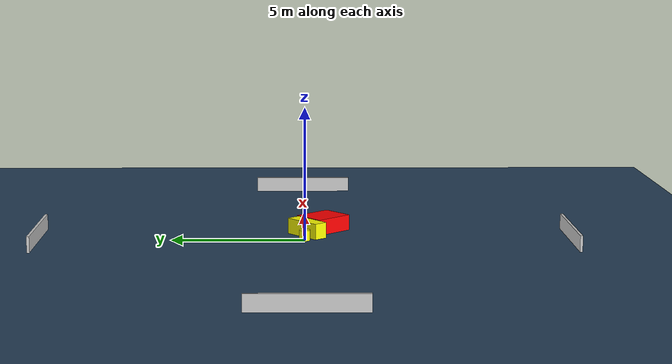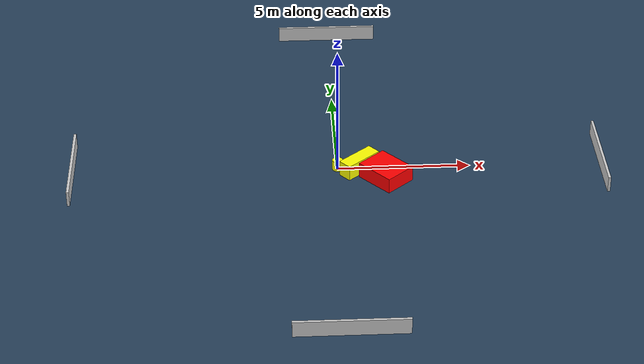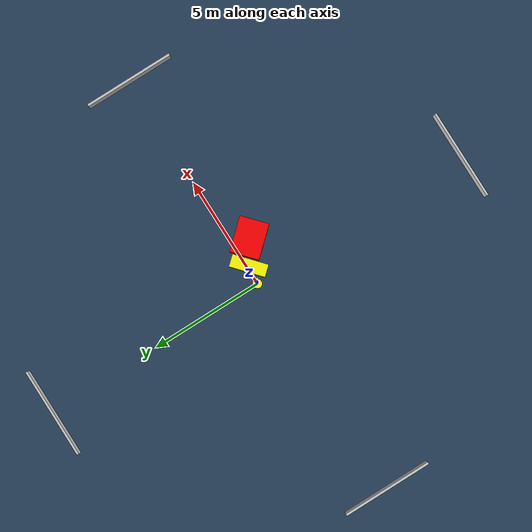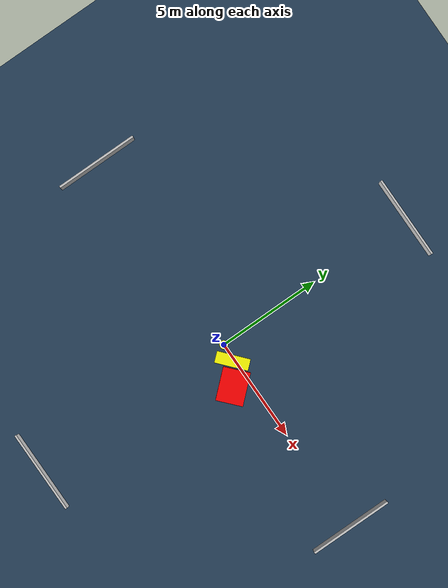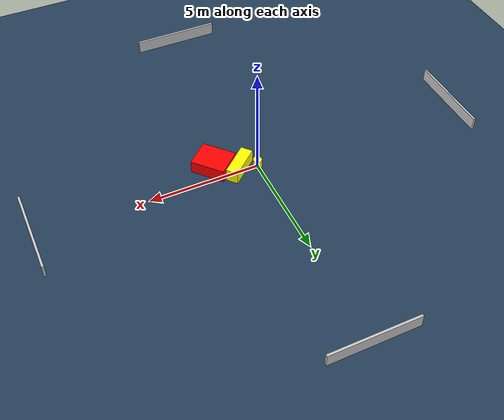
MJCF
<?xml version="1.0" ?>
<mujoco model="generated_environment">
  <option timestep="0.01" integrator="RK4" cone="elliptic"/>
  <default>
    <geom density="1"/>
  </default>
  <asset>
    <texture builtin="gradient" height="3072" name="skybox" rgb1="0.3 0.5 0.7" rgb2="0 0 0" type="skybox" width="512"/>
    <texture builtin="checker" height="300" name="groundplane" rgb1="0.2 0.3 0.4" rgb2="0.1 0.2 0.3" type="2d" width="300"/>
    <material name="groundplane" reflectance="0.2" texrepeat="5 5" texture="groundplane"/>
  </asset>
  <worldbody>
    <light dir="0 0 -1" directional="true" pos="0 0 1.5"/>
    <geom condim="3" friction="0.5 0.005 0.001" material="groundplane" name="floor" pos="0 0 0" size="0 0 0.05" type="plane"/>
    <body name="walls">
      <geom name="wall_1" condim="4" pos="-10.0 0.0 0.3" rgba="0.800000011920929 0.800000011920929 0.800000011920929 1.0" size="0.05 2.0 0.3" type="box"/>
      <geom name="wall_2" condim="4" pos="10.0 0.0 0.3" rgba="0.800000011920929 0.800000011920929 0.800000011920929 1.0" size="0.05 2.0 0.3" type="box"/>
      <geom name="wall_3" condim="4" pos="0.0 -10.0 0.3" rgba="0.800000011920929 0.800000011920929 0.800000011920929 1.0" size="2.0 0.05 0.3" type="box"/>
      <geom name="wall_4" condim="4" pos="0.0 10.0 0.3" rgba="0.800000011920929 0.800000011920929 0.800000011920929 1.0" size="2.0 0.05 0.3" type="box"/>
    </body>
    <body name="robot">
      <joint name="joint_x" type="slide" pos="0 0 0" axis="1 0 0"/>
      <joint name="joint_y" type="slide" pos="0 0 0" axis="0 1 0"/>
      <geom name="robot" type="cylinder" pos="0.0 0.0 0.2" size="0.2 0.2 0.0" mass="5.0" friction="1.0 0.005 0.0001" condim="4" rgba="1.0 1.0 0.0 1.0"/>
    </body>
    <body name="obstacle_1_movable">
      <geom name="obstacle_1_movable" condim="4" pos="0.817917409107572 -0.09444080873548454 0.3" euler="0 0 311.2415604709261" friction="0.0 0.005 0.001" rgba="1.0 1.0 0.0 1.0" size="0.270850341886836 0.7793621104300659 0.3" type="box" mass="0.1"/>
      <joint type="free"/>
    </body>
    <body name="obstacle_2_static">
      <geom name="obstacle_2_static" condim="4" pos="1.7783403057068001 -0.730997510614054 0.3" euler="0 0 132.00918142053393" friction="0.0 0.005 0.001" rgba="1.0 0.0 0.0 1.0" size="0.7804799980511061 0.6329960360986335 0.3" type="box"/>
    </body>
  </worldbody>
  <actuator>
    <motor name="actuator_x" joint="joint_x" gear="1" ctrlrange="-1 1"/>
    <motor name="actuator_y" joint="joint_y" gear="1" ctrlrange="-1 1"/>
  </actuator>
</mujoco>
